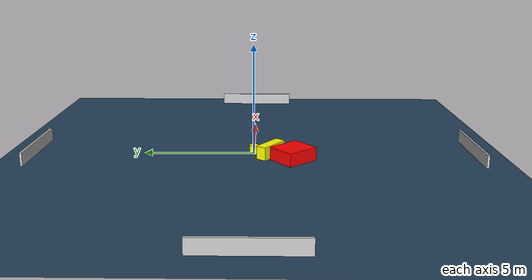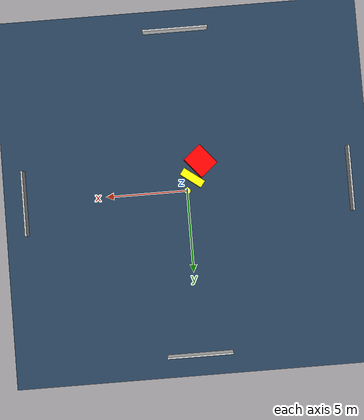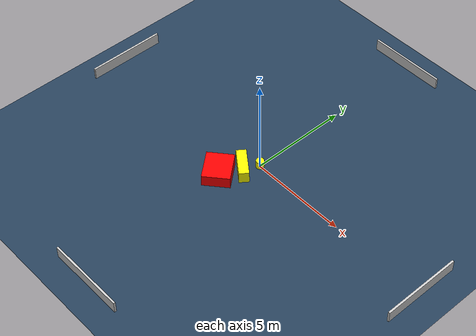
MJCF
<?xml version="1.0" ?>
<mujoco model="generated_environment">
  <option timestep="0.01" integrator="RK4" cone="elliptic"/>
  <default>
    <geom density="1"/>
  </default>
  <asset>
    <texture builtin="gradient" height="3072" name="skybox" rgb1="0.3 0.5 0.7" rgb2="0 0 0" type="skybox" width="512"/>
    <texture builtin="checker" height="300" name="groundplane" rgb1="0.2 0.3 0.4" rgb2="0.1 0.2 0.3" type="2d" width="300"/>
    <material name="groundplane" reflectance="0.2" texrepeat="5 5" texture="groundplane"/>
  </asset>
  <worldbody>
    <light dir="0 0 -1" directional="true" pos="0 0 1.5"/>
    <geom condim="3" friction="0.5 0.005 0.001" material="groundplane" name="floor" pos="0 0 0" size="0 0 0.05" type="plane"/>
    <body name="walls">
      <geom name="wall_1" condim="4" pos="-10.0 0.0 0.3" rgba="0.800000011920929 0.800000011920929 0.800000011920929 1.0" size="0.05 2.0 0.3" type="box"/>
      <geom name="wall_2" condim="4" pos="10.0 0.0 0.3" rgba="0.800000011920929 0.800000011920929 0.800000011920929 1.0" size="0.05 2.0 0.3" type="box"/>
      <geom name="wall_3" condim="4" pos="0.0 -10.0 0.3" rgba="0.800000011920929 0.800000011920929 0.800000011920929 1.0" size="2.0 0.05 0.3" type="box"/>
      <geom name="wall_4" condim="4" pos="0.0 10.0 0.3" rgba="0.800000011920929 0.800000011920929 0.800000011920929 1.0" size="2.0 0.05 0.3" type="box"/>
    </body>
    <body name="robot">
      <joint name="joint_x" type="slide" pos="0 0 0" axis="1 0 0"/>
      <joint name="joint_y" type="slide" pos="0 0 0" axis="0 1 0"/>
      <geom name="robot" type="cylinder" pos="0.0 0.0 0.2" size="0.2 0.2 0.0" mass="5.0" friction="1.0 0.005 0.0001" condim="4" rgba="1.0 1.0 0.0 1.0"/>
    </body>
    <body name="obstacle_1_movable">
      <geom name="obstacle_1_movable" condim="4" pos="-0.36527239541780676 -0.7645372295252368 0.3" euler="0 0 323.3558227700432" friction="0.0 0.005 0.001" rgba="1.0 1.0 0.0 1.0" size="0.7496698758792626 0.24507210248297617 0.3" type="box" mass="0.1"/>
      <joint type="free"/>
    </body>
    <body name="obstacle_2_static">
      <geom name="obstacle_2_static" condim="4" pos="-0.9383423531888957 -1.7493977500670097 0.3" euler="0 0 309.9806544630918" friction="0.0 0.005 0.001" rgba="1.0 0.0 0.0 1.0" size="0.7738476802682757 0.673626362535634 0.3" type="box"/>
    </body>
  </worldbody>
  <actuator>
    <motor name="actuator_x" joint="joint_x" gear="1" ctrlrange="-1 1"/>
    <motor name="actuator_y" joint="joint_y" gear="1" ctrlrange="-1 1"/>
  </actuator>
</mujoco>
